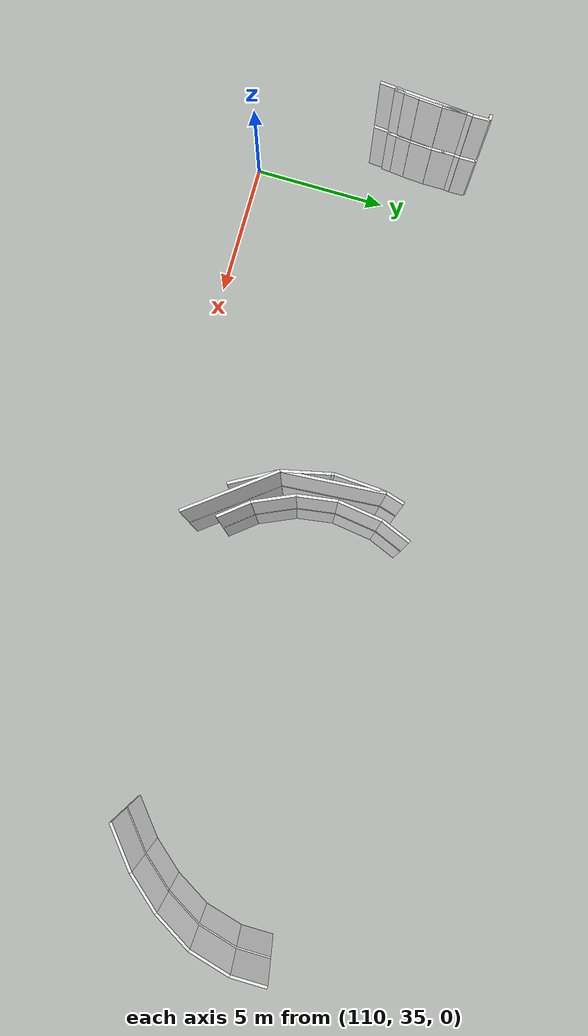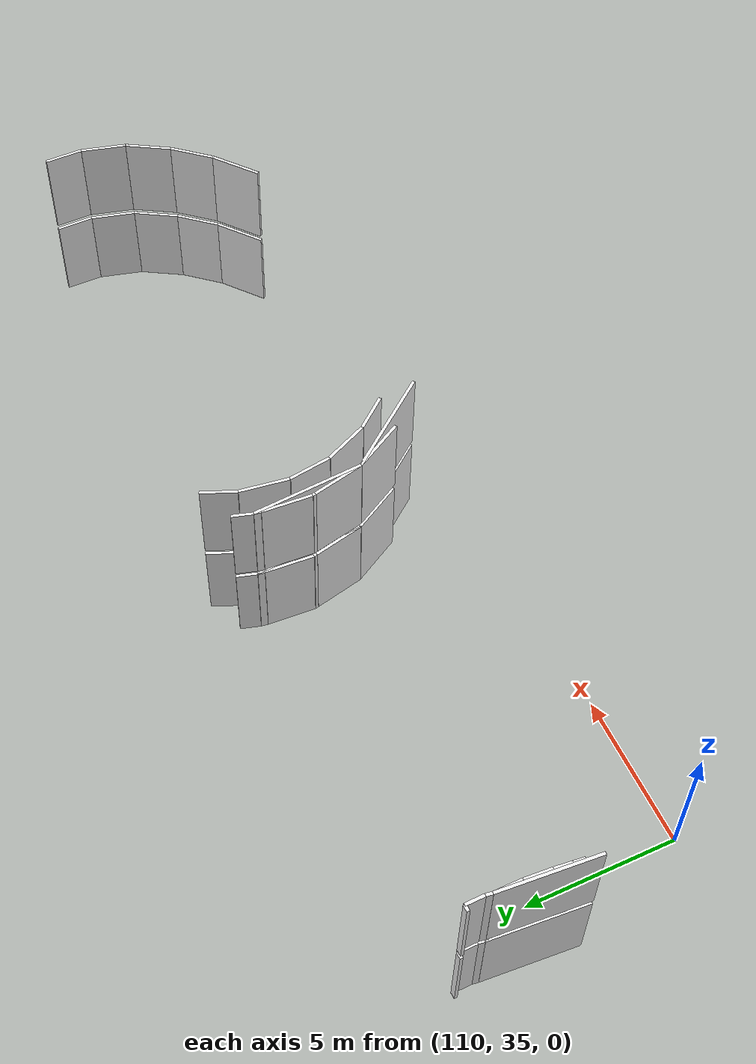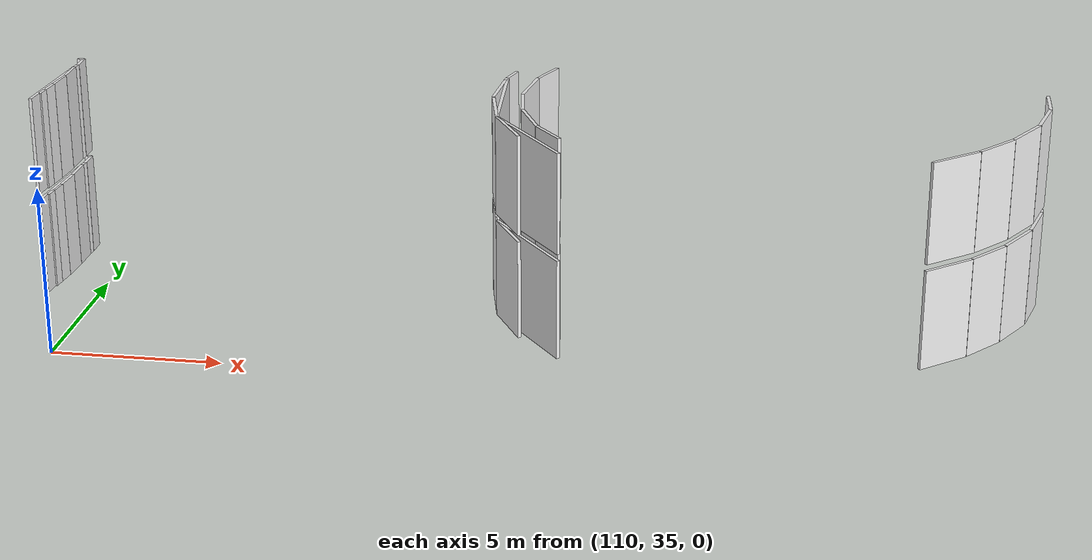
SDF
<sdf version="1.6">
 <world name="default">
  <model name="wall_123.1_43.7_0.0_link">
   <static>true</static>
   <pose>123.06000000002678 43.71500000008382 1.5 0 0 -1.9676144706524863</pose>
   <link name="link">
    <visual name="visual">
     <geometry><box><size>1.138463877595061 0.1 3</size></box></geometry>
     <material>
      <script><uri>file://media/materials/scripts/gazebo.material</uri><name>Gazebo/White</name></script>
     </material>
    </visual>
   </link>
  </model>
  <model name="wall_122.7_42.4_0.0_link">
   <static>true</static>
   <pose>122.73000000001048 42.40999999991618 1.5 0 0 -1.710898051205598</pose>
   <link name="link">
    <visual name="visual">
     <geometry><box><size>1.5754364475241969 0.1 3</size></box></geometry>
     <material>
      <script><uri>file://media/materials/scripts/gazebo.material</uri><name>Gazebo/White</name></script>
     </material>
    </visual>
   </link>
  </model>
  <model name="wall_122.7_40.9_0.0_link">
   <static>true</static>
   <pose>122.72000000000116 40.94499999983236 1.5 0 0 -1.4258349304067353</pose>
   <link name="link">
    <visual name="visual">
     <geometry><box><size>1.384521578131188 0.1 3</size></box></geometry>
     <material>
      <script><uri>file://media/materials/scripts/gazebo.material</uri><name>Gazebo/White</name></script>
     </material>
    </visual>
   </link>
  </model>
  <model name="wall_123.1_39.6_0.0_link">
   <static>true</static>
   <pose>123.13000000000466 39.574999999953434 1.5 0 0 -1.1458199052710913</pose>
   <link name="link">
    <visual name="visual">
     <geometry><box><size>1.5037619489216145 0.1 3</size></box></geometry>
     <material>
      <script><uri>file://media/materials/scripts/gazebo.material</uri><name>Gazebo/White</name></script>
     </material>
    </visual>
   </link>
  </model>
  <model name="wall_123.8_38.4_0.0_link">
   <static>true</static>
   <pose>123.8299999999872 38.41000000014901 1.5 0 0 -0.8884797719201485</pose>
   <link name="link">
    <visual name="visual">
     <geometry><box><size>1.2369316876372989 0.1 3</size></box></geometry>
     <material>
      <script><uri>file://media/materials/scripts/gazebo.material</uri><name>Gazebo/White</name></script>
     </material>
    </visual>
   </link>
  </model>
  <model name="wall_135.2_38.0_0.0_link">
   <static>true</static>
   <pose>135.15499999999884 38.03499999991618 1.5 0 0 0.6848975642669308</pose>
   <link name="link">
    <visual name="visual">
     <geometry><box><size>1.6914490827793647 0.1 3</size></box></geometry>
     <material>
      <script><uri>file://media/materials/scripts/gazebo.material</uri><name>Gazebo/White</name></script>
     </material>
    </visual>
   </link>
  </model>
  <model name="wall_136.3_39.1_0.0_link">
   <static>true</static>
   <pose>136.2950000000128 39.13500000000931 1.5 0 0 0.8614417228159299</pose>
   <link name="link">
    <visual name="visual">
     <geometry><box><size>1.4892279882068225 0.1 3</size></box></geometry>
     <material>
      <script><uri>file://media/materials/scripts/gazebo.material</uri><name>Gazebo/White</name></script>
     </material>
    </visual>
   </link>
  </model>
  <model name="wall_137.2_40.4_0.0_link">
   <static>true</static>
   <pose>137.1700000000128 40.360000000102445 1.5 0 0 1.0370881351170083</pose>
   <link name="link">
    <visual name="visual">
     <geometry><box><size>1.5332318805419543 0.1 3</size></box></geometry>
     <material>
      <script><uri>file://media/materials/scripts/gazebo.material</uri><name>Gazebo/White</name></script>
     </material>
    </visual>
   </link>
  </model>
  <model name="wall_137.8_41.7_0.0_link">
   <static>true</static>
   <pose>137.75500000000466 41.74500000011176 1.5 0 0 1.3080489362155228</pose>
   <link name="link">
    <visual name="visual">
     <geometry><box><size>1.501532550613227 0.1 3</size></box></geometry>
     <material>
      <script><uri>file://media/materials/scripts/gazebo.material</uri><name>Gazebo/White</name></script>
     </material>
    </visual>
   </link>
  </model>
  <model name="wall_138.0_43.1_0.0_link">
   <static>true</static>
   <pose>137.95000000001164 43.08500000019558 1.5 0 0 1.5707963267948966</pose>
   <link name="link">
    <visual name="visual">
     <geometry><box><size>1.2299999999813735 0.1 3</size></box></geometry>
     <material>
      <script><uri>file://media/materials/scripts/gazebo.material</uri><name>Gazebo/White</name></script>
     </material>
    </visual>
   </link>
  </model>
  <model name="wall_122.0_43.4_0.0_link">
   <static>true</static>
   <pose>122.02499999999418 43.40999999991618 1.5 0 0 -1.8593836886367348</pose>
   <link name="link">
    <visual name="visual">
     <geometry><box><size>0.6676076693446367 0.1 3</size></box></geometry>
     <material>
      <script><uri>file://media/materials/scripts/gazebo.material</uri><name>Gazebo/White</name></script>
     </material>
    </visual>
   </link>
  </model>
  <model name="wall_108.7_42.7_0.0_link">
   <static>true</static>
   <pose>108.65499999999884 42.71999999997206 1.5 0 0 1.587461450424783</pose>
   <link name="link">
    <visual name="visual">
     <geometry><box><size>0.6000833276394044 0.1 3</size></box></geometry>
     <material>
      <script><uri>file://media/materials/scripts/gazebo.material</uri><name>Gazebo/White</name></script>
     </material>
    </visual>
   </link>
  </model>
  <model name="wall_108.6_43.0_0.0_link">
   <static>true</static>
   <pose>108.55000000001746 43.014999999897555 1.5 0 0 -3.0916342566630535</pose>
   <link name="link">
    <visual name="visual">
     <geometry><box><size>0.20024984396872697 0.1 3</size></box></geometry>
     <material>
      <script><uri>file://media/materials/scripts/gazebo.material</uri><name>Gazebo/White</name></script>
     </material>
    </visual>
   </link>
  </model>
  <model name="wall_108.5_39.8_0.0_link">
   <static>true</static>
   <pose>108.48999999999069 39.795000000158325 1.5 0 0 1.4570043195761424</pose>
   <link name="link">
    <visual name="visual">
     <geometry><box><size>0.35227829917293063 0.1 3</size></box></geometry>
     <material>
      <script><uri>file://media/materials/scripts/gazebo.material</uri><name>Gazebo/White</name></script>
     </material>
    </visual>
   </link>
  </model>
  <model name="wall_108.5_40.2_0.0_link">
   <static>true</static>
   <pose>108.54000000000815 40.23999999999069 1.5 0 0 1.4601391055381852</pose>
   <link name="link">
    <visual name="visual">
     <geometry><box><size>0.5433231078621997 0.1 3</size></box></geometry>
     <material>
      <script><uri>file://media/materials/scripts/gazebo.material</uri><name>Gazebo/White</name></script>
     </material>
    </visual>
   </link>
  </model>
  <model name="wall_108.6_40.9_0.0_link">
   <static>true</static>
   <pose>108.60000000000582 40.92999999993481 1.5 0 0 1.4994888620391533</pose>
   <link name="link">
    <visual name="visual">
     <geometry><box><size>0.8421401311727711 0.1 3</size></box></geometry>
     <material>
      <script><uri>file://media/materials/scripts/gazebo.material</uri><name>Gazebo/White</name></script>
     </material>
    </visual>
   </link>
  </model>
  <model name="wall_108.6_41.8_0.0_link">
   <static>true</static>
   <pose>108.63000000000466 41.78500000014901 1.5 0 0 1.5707963267948966</pose>
   <link name="link">
    <visual name="visual">
     <geometry><box><size>0.8700000001117587 0.1 3</size></box></geometry>
     <material>
      <script><uri>file://media/materials/scripts/gazebo.material</uri><name>Gazebo/White</name></script>
     </material>
    </visual>
   </link>
  </model>
  <model name="wall_108.6_42.3_0.0_link">
   <static>true</static>
   <pose>108.64499999998952 42.32000000006519 1.5 0 0 1.4219063791284725</pose>
   <link name="link">
    <visual name="visual">
     <geometry><box><size>0.20223748388077126 0.1 3</size></box></geometry>
     <material>
      <script><uri>file://media/materials/scripts/gazebo.material</uri><name>Gazebo/White</name></script>
     </material>
    </visual>
   </link>
  </model>
  <model name="wall_121.9_43.0_0.0_link">
   <static>true</static>
   <pose>121.91500000000815 42.97999999998137 1.5 0 0 -1.706324040804011</pose>
   <link name="link">
    <visual name="visual">
     <geometry><box><size>0.22203603284927648 0.1 3</size></box></geometry>
     <material>
      <script><uri>file://media/materials/scripts/gazebo.material</uri><name>Gazebo/White</name></script>
     </material>
    </visual>
   </link>
  </model>
  <model name="wall_121.9_42.1_0.0_link">
   <static>true</static>
   <pose>121.85000000000582 42.07000000006519 1.5 0 0 -1.6332151368089731</pose>
   <link name="link">
    <visual name="visual">
     <geometry><box><size>1.6031219542832693 0.1 3</size></box></geometry>
     <material>
      <script><uri>file://media/materials/scripts/gazebo.material</uri><name>Gazebo/White</name></script>
     </material>
    </visual>
   </link>
  </model>
  <model name="wall_121.8_41.2_0.0_link">
   <static>true</static>
   <pose>121.80999999999767 41.21999999997206 1.5 0 0 -1.373400766945016</pose>
   <link name="link">
    <visual name="visual">
     <geometry><box><size>0.10198039036683233 0.1 3</size></box></geometry>
     <material>
      <script><uri>file://media/materials/scripts/gazebo.material</uri><name>Gazebo/White</name></script>
     </material>
    </visual>
   </link>
  </model>
  <model name="wall_122.0_40.3_0.0_link">
   <static>true</static>
   <pose>122.00500000000466 40.34499999997206 1.5 0 0 -1.350203072831387</pose>
   <link name="link">
    <visual name="visual">
     <geometry><box><size>1.6909760494132429 0.1 3</size></box></geometry>
     <material>
      <script><uri>file://media/materials/scripts/gazebo.material</uri><name>Gazebo/White</name></script>
     </material>
    </visual>
   </link>
  </model>
  <model name="wall_122.6_38.7_0.0_link">
   <static>true</static>
   <pose>122.63000000000466 38.73999999999069 1.5 0 0 -1.057190322085212</pose>
   <link name="link">
    <visual name="visual">
     <geometry><box><size>1.7910890542300064 0.1 3</size></box></geometry>
     <material>
      <script><uri>file://media/materials/scripts/gazebo.material</uri><name>Gazebo/White</name></script>
     </material>
    </visual>
   </link>
  </model>
  <model name="wall_123.3_38.1_0.0_link">
   <static>true</static>
   <pose>123.27999999999884 38.12000000011176 1.5 0 0 2.232333811009223</pose>
   <link name="link">
    <visual name="visual">
     <geometry><box><size>3.548577179508213 0.1 3</size></box></geometry>
     <material>
      <script><uri>file://media/materials/scripts/gazebo.material</uri><name>Gazebo/White</name></script>
     </material>
    </visual>
   </link>
  </model>
  <model name="wall_122.1_41.3_0.0_link">
   <static>true</static>
   <pose>122.05999999999767 41.30499999993481 1.5 0 0 1.6434971027864747</pose>
   <link name="link">
    <visual name="visual">
     <geometry><box><size>3.5794552656525696 0.1 3</size></box></geometry>
     <material>
      <script><uri>file://media/materials/scripts/gazebo.material</uri><name>Gazebo/White</name></script>
     </material>
    </visual>
   </link>
  </model>
  <model name="wall_108.5_40.7_0.0_link">
   <static>true</static>
   <pose>108.50500000000466 40.6500000001397 1.5 0 0 -1.6502465656866598</pose>
   <link name="link">
    <visual name="visual">
     <geometry><box><size>3.149936507426589 0.1 3</size></box></geometry>
     <material>
      <script><uri>file://media/materials/scripts/gazebo.material</uri><name>Gazebo/White</name></script>
     </material>
    </visual>
   </link>
  </model>
  <model name="wall_123.1_43.7_3.2_link">
   <static>true</static>
   <pose>123.06000000002678 43.71500000008382 4.7 0 0 -1.9676144706524863</pose>
   <link name="link">
    <visual name="visual">
     <geometry><box><size>1.138463877595061 0.1 3</size></box></geometry>
     <material>
      <script><uri>file://media/materials/scripts/gazebo.material</uri><name>Gazebo/White</name></script>
     </material>
    </visual>
   </link>
  </model>
  <model name="wall_122.7_42.4_3.2_link">
   <static>true</static>
   <pose>122.73000000001048 42.40999999991618 4.7 0 0 -1.710898051205598</pose>
   <link name="link">
    <visual name="visual">
     <geometry><box><size>1.5754364475241969 0.1 3</size></box></geometry>
     <material>
      <script><uri>file://media/materials/scripts/gazebo.material</uri><name>Gazebo/White</name></script>
     </material>
    </visual>
   </link>
  </model>
  <model name="wall_122.7_40.9_3.2_link">
   <static>true</static>
   <pose>122.72000000000116 40.94499999983236 4.7 0 0 -1.4258349304067353</pose>
   <link name="link">
    <visual name="visual">
     <geometry><box><size>1.384521578131188 0.1 3</size></box></geometry>
     <material>
      <script><uri>file://media/materials/scripts/gazebo.material</uri><name>Gazebo/White</name></script>
     </material>
    </visual>
   </link>
  </model>
  <model name="wall_123.1_39.6_3.2_link">
   <static>true</static>
   <pose>123.13000000000466 39.574999999953434 4.7 0 0 -1.1458199052710913</pose>
   <link name="link">
    <visual name="visual">
     <geometry><box><size>1.5037619489216145 0.1 3</size></box></geometry>
     <material>
      <script><uri>file://media/materials/scripts/gazebo.material</uri><name>Gazebo/White</name></script>
     </material>
    </visual>
   </link>
  </model>
  <model name="wall_123.8_38.4_3.2_link">
   <static>true</static>
   <pose>123.8299999999872 38.41000000014901 4.7 0 0 -0.8884797719201485</pose>
   <link name="link">
    <visual name="visual">
     <geometry><box><size>1.2369316876372989 0.1 3</size></box></geometry>
     <material>
      <script><uri>file://media/materials/scripts/gazebo.material</uri><name>Gazebo/White</name></script>
     </material>
    </visual>
   </link>
  </model>
  <model name="wall_135.2_38.0_3.2_link">
   <static>true</static>
   <pose>135.15499999999884 38.03499999991618 4.7 0 0 0.6848975642669308</pose>
   <link name="link">
    <visual name="visual">
     <geometry><box><size>1.6914490827793647 0.1 3</size></box></geometry>
     <material>
      <script><uri>file://media/materials/scripts/gazebo.material</uri><name>Gazebo/White</name></script>
     </material>
    </visual>
   </link>
  </model>
  <model name="wall_136.3_39.1_3.2_link">
   <static>true</static>
   <pose>136.2950000000128 39.13500000000931 4.7 0 0 0.8614417228159299</pose>
   <link name="link">
    <visual name="visual">
     <geometry><box><size>1.4892279882068225 0.1 3</size></box></geometry>
     <material>
      <script><uri>file://media/materials/scripts/gazebo.material</uri><name>Gazebo/White</name></script>
     </material>
    </visual>
   </link>
  </model>
  <model name="wall_137.2_40.4_3.2_link">
   <static>true</static>
   <pose>137.1700000000128 40.360000000102445 4.7 0 0 1.0370881351170083</pose>
   <link name="link">
    <visual name="visual">
     <geometry><box><size>1.5332318805419543 0.1 3</size></box></geometry>
     <material>
      <script><uri>file://media/materials/scripts/gazebo.material</uri><name>Gazebo/White</name></script>
     </material>
    </visual>
   </link>
  </model>
  <model name="wall_137.8_41.7_3.2_link">
   <static>true</static>
   <pose>137.75500000000466 41.74500000011176 4.7 0 0 1.3080489362155228</pose>
   <link name="link">
    <visual name="visual">
     <geometry><box><size>1.501532550613227 0.1 3</size></box></geometry>
     <material>
      <script><uri>file://media/materials/scripts/gazebo.material</uri><name>Gazebo/White</name></script>
     </material>
    </visual>
   </link>
  </model>
  <model name="wall_138.0_43.1_3.2_link">
   <static>true</static>
   <pose>137.95000000001164 43.08500000019558 4.7 0 0 1.5707963267948966</pose>
   <link name="link">
    <visual name="visual">
     <geometry><box><size>1.2299999999813735 0.1 3</size></box></geometry>
     <material>
      <script><uri>file://media/materials/scripts/gazebo.material</uri><name>Gazebo/White</name></script>
     </material>
    </visual>
   </link>
  </model>
  <model name="wall_122.0_43.4_3.2_link">
   <static>true</static>
   <pose>122.02499999999418 43.40999999991618 4.7 0 0 -1.8593836886367348</pose>
   <link name="link">
    <visual name="visual">
     <geometry><box><size>0.6676076693446367 0.1 3</size></box></geometry>
     <material>
      <script><uri>file://media/materials/scripts/gazebo.material</uri><name>Gazebo/White</name></script>
     </material>
    </visual>
   </link>
  </model>
  <model name="wall_108.7_42.7_3.2_link">
   <static>true</static>
   <pose>108.65499999999884 42.71999999997206 4.7 0 0 1.587461450424783</pose>
   <link name="link">
    <visual name="visual">
     <geometry><box><size>0.6000833276394044 0.1 3</size></box></geometry>
     <material>
      <script><uri>file://media/materials/scripts/gazebo.material</uri><name>Gazebo/White</name></script>
     </material>
    </visual>
   </link>
  </model>
  <model name="wall_108.6_43.0_3.2_link">
   <static>true</static>
   <pose>108.55000000001746 43.014999999897555 4.7 0 0 -3.0916342566630535</pose>
   <link name="link">
    <visual name="visual">
     <geometry><box><size>0.20024984396872697 0.1 3</size></box></geometry>
     <material>
      <script><uri>file://media/materials/scripts/gazebo.material</uri><name>Gazebo/White</name></script>
     </material>
    </visual>
   </link>
  </model>
  <model name="wall_108.5_39.8_3.2_link">
   <static>true</static>
   <pose>108.48999999999069 39.795000000158325 4.7 0 0 1.4570043195761424</pose>
   <link name="link">
    <visual name="visual">
     <geometry><box><size>0.35227829917293063 0.1 3</size></box></geometry>
     <material>
      <script><uri>file://media/materials/scripts/gazebo.material</uri><name>Gazebo/White</name></script>
     </material>
    </visual>
   </link>
  </model>
  <model name="wall_108.5_40.2_3.2_link">
   <static>true</static>
   <pose>108.54000000000815 40.23999999999069 4.7 0 0 1.4601391055381852</pose>
   <link name="link">
    <visual name="visual">
     <geometry><box><size>0.5433231078621997 0.1 3</size></box></geometry>
     <material>
      <script><uri>file://media/materials/scripts/gazebo.material</uri><name>Gazebo/White</name></script>
     </material>
    </visual>
   </link>
  </model>
  <model name="wall_108.6_40.9_3.2_link">
   <static>true</static>
   <pose>108.60000000000582 40.92999999993481 4.7 0 0 1.4994888620391533</pose>
   <link name="link">
    <visual name="visual">
     <geometry><box><size>0.8421401311727711 0.1 3</size></box></geometry>
     <material>
      <script><uri>file://media/materials/scripts/gazebo.material</uri><name>Gazebo/White</name></script>
     </material>
    </visual>
   </link>
  </model>
  <model name="wall_108.6_41.8_3.2_link">
   <static>true</static>
   <pose>108.63000000000466 41.78500000014901 4.7 0 0 1.5707963267948966</pose>
   <link name="link">
    <visual name="visual">
     <geometry><box><size>0.8700000001117587 0.1 3</size></box></geometry>
     <material>
      <script><uri>file://media/materials/scripts/gazebo.material</uri><name>Gazebo/White</name></script>
     </material>
    </visual>
   </link>
  </model>
  <model name="wall_108.6_42.3_3.2_link">
   <static>true</static>
   <pose>108.64499999998952 42.32000000006519 4.7 0 0 1.4219063791284725</pose>
   <link name="link">
    <visual name="visual">
     <geometry><box><size>0.20223748388077126 0.1 3</size></box></geometry>
     <material>
      <script><uri>file://media/materials/scripts/gazebo.material</uri><name>Gazebo/White</name></script>
     </material>
    </visual>
   </link>
  </model>
  <model name="wall_121.9_43.0_3.2_link">
   <static>true</static>
   <pose>121.91500000000815 42.97999999998137 4.7 0 0 -1.706324040804011</pose>
   <link name="link">
    <visual name="visual">
     <geometry><box><size>0.22203603284927648 0.1 3</size></box></geometry>
     <material>
      <script><uri>file://media/materials/scripts/gazebo.material</uri><name>Gazebo/White</name></script>
     </material>
    </visual>
   </link>
  </model>
  <model name="wall_121.9_42.1_3.2_link">
   <static>true</static>
   <pose>121.85000000000582 42.07000000006519 4.7 0 0 -1.6332151368089731</pose>
   <link name="link">
    <visual name="visual">
     <geometry><box><size>1.6031219542832693 0.1 3</size></box></geometry>
     <material>
      <script><uri>file://media/materials/scripts/gazebo.material</uri><name>Gazebo/White</name></script>
     </material>
    </visual>
   </link>
  </model>
  <model name="wall_121.8_41.2_3.2_link">
   <static>true</static>
   <pose>121.80999999999767 41.21999999997206 4.7 0 0 -1.373400766945016</pose>
   <link name="link">
    <visual name="visual">
     <geometry><box><size>0.10198039036683233 0.1 3</size></box></geometry>
     <material>
      <script><uri>file://media/materials/scripts/gazebo.material</uri><name>Gazebo/White</name></script>
     </material>
    </visual>
   </link>
  </model>
  <model name="wall_122.0_40.3_3.2_link">
   <static>true</static>
   <pose>122.00500000000466 40.34499999997206 4.7 0 0 -1.350203072831387</pose>
   <link name="link">
    <visual name="visual">
     <geometry><box><size>1.6909760494132429 0.1 3</size></box></geometry>
     <material>
      <script><uri>file://media/materials/scripts/gazebo.material</uri><name>Gazebo/White</name></script>
     </material>
    </visual>
   </link>
  </model>
  <model name="wall_122.6_38.7_3.2_link">
   <static>true</static>
   <pose>122.63000000000466 38.73999999999069 4.7 0 0 -1.057190322085212</pose>
   <link name="link">
    <visual name="visual">
     <geometry><box><size>1.7910890542300064 0.1 3</size></box></geometry>
     <material>
      <script><uri>file://media/materials/scripts/gazebo.material</uri><name>Gazebo/White</name></script>
     </material>
    </visual>
   </link>
  </model>
  <model name="wall_123.3_38.1_3.2_link">
   <static>true</static>
   <pose>123.27999999999884 38.12000000011176 4.7 0 0 2.232333811009223</pose>
   <link name="link">
    <visual name="visual">
     <geometry><box><size>3.548577179508213 0.1 3</size></box></geometry>
     <material>
      <script><uri>file://media/materials/scripts/gazebo.material</uri><name>Gazebo/White</name></script>
     </material>
    </visual>
   </link>
  </model>
  <model name="wall_122.1_41.3_3.2_link">
   <static>true</static>
   <pose>122.05999999999767 41.30499999993481 4.7 0 0 1.6434971027864747</pose>
   <link name="link">
    <visual name="visual">
     <geometry><box><size>3.5794552656525696 0.1 3</size></box></geometry>
     <material>
      <script><uri>file://media/materials/scripts/gazebo.material</uri><name>Gazebo/White</name></script>
     </material>
    </visual>
   </link>
  </model>
  <model name="wall_108.5_40.7_3.2_link">
   <static>true</static>
   <pose>108.50500000000466 40.6500000001397 4.7 0 0 -1.6502465656866598</pose>
   <link name="link">
    <visual name="visual">
     <geometry><box><size>3.149936507426589 0.1 3</size></box></geometry>
     <material>
      <script><uri>file://media/materials/scripts/gazebo.material</uri><name>Gazebo/White</name></script>
     </material>
    </visual>
   </link>
  </model>
 </world>
</sdf>
